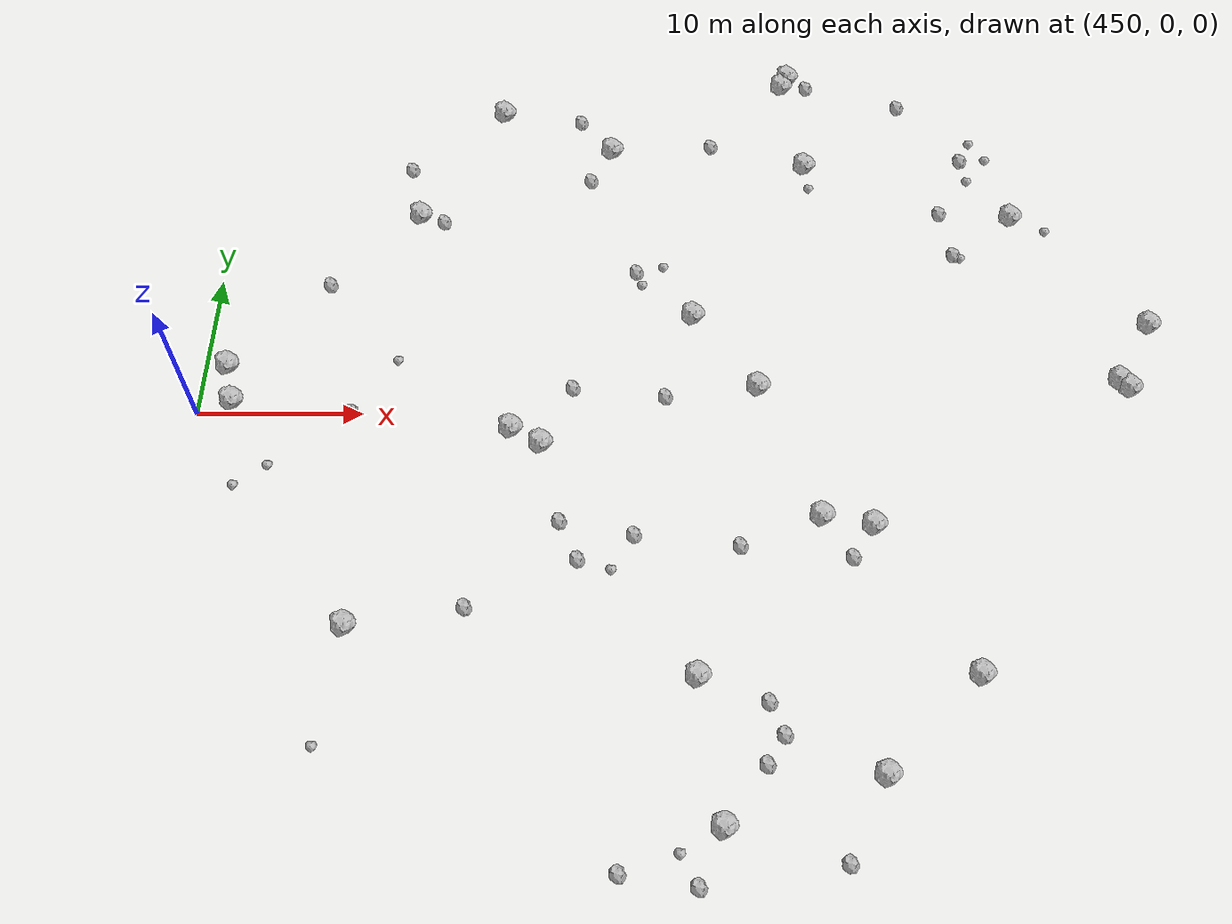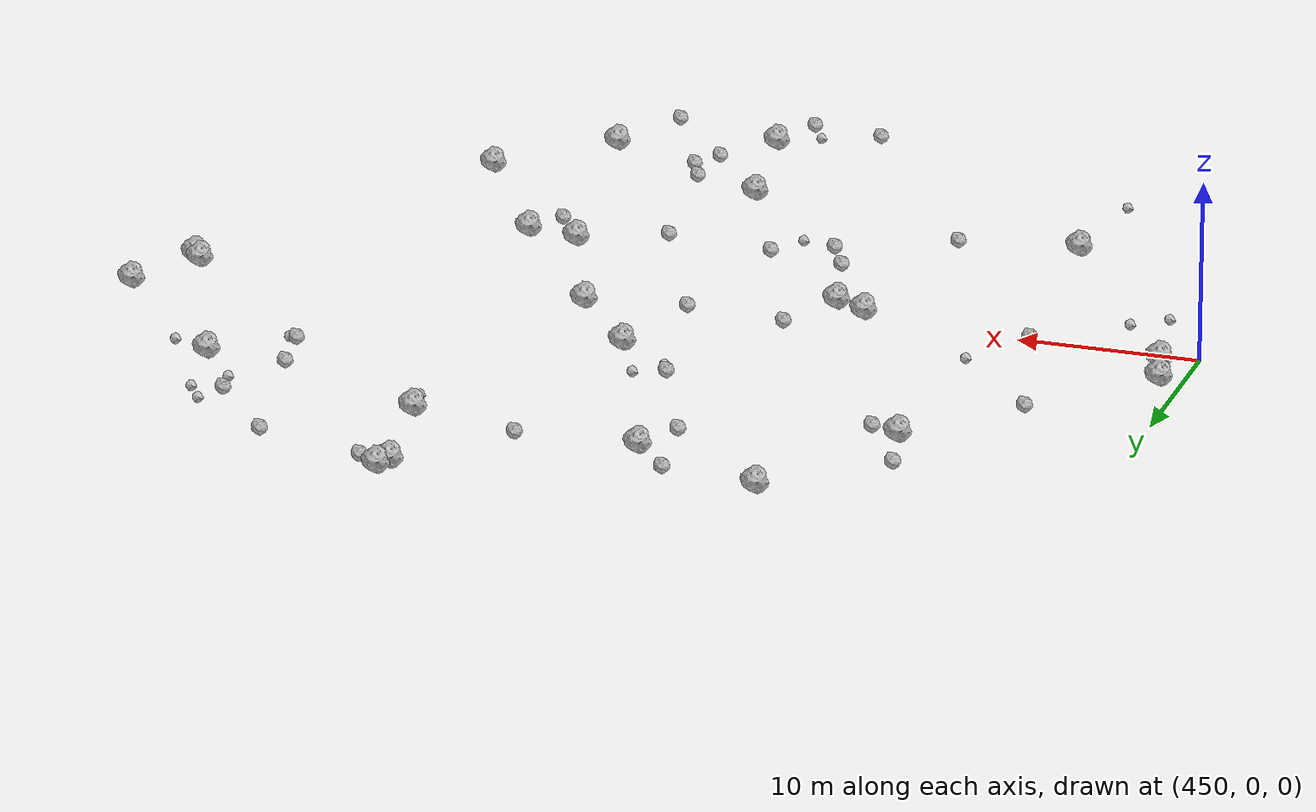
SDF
<sdf version="1.6">
 <world name="default">
  <include><uri>model://sun</uri></include>
  <model name="rock1_12_4">
   <include><uri>model://rock1</uri><pose>486.24751792514223 27.90586036801035 0.5 0 0 0</pose></include>
  </model>
  <model name="rock1_12_5">
   <include><uri>model://rock1</uri><pose>508.0959578543312 6.723588766633881 0.5 0 0 0</pose></include>
  </model>
  <model name="rock1_12_6">
   <include><uri>model://rock1</uri><pose>479.80540426777856 7.318488741608185 0.5 0 0 0</pose></include>
  </model>
  <model name="rock1_12_7">
   <include><uri>model://rock1</uri><pose>474.37820469455517 21.100102016511116 0.5 0 0 0</pose></include>
  </model>
  <model name="rock1_12_8">
   <include><uri>model://rock1</uri><pose>452.0124216611176 0.8327382865963813 0.5 0 0 0</pose></include>
  </model>
  <model name="rock1_12_9">
   <include><uri>model://rock1</uri><pose>490.2483811277626 -7.632700338549473 0.5 0 0 0</pose></include>
  </model>
  <model name="rock1_12_10">
   <include><uri>model://rock1</uri><pose>470.79351117713605 -2.1495590145183385 0.5 0 0 0</pose></include>
  </model>
  <model name="rock1_12_11">
   <include><uri>model://rock1</uri><pose>466.9942718094638 24.42323140706545 0.5 0 0 0</pose></include>
  </model>
  <model name="rock1_12_12">
   <include><uri>model://rock1</uri><pose>483.7690346029485 1.9785897016890353 0.5 0 0 0</pose></include>
  </model>
  <model name="rock1_12_13">
   <include><uri>model://rock1</uri><pose>490.0932177582639 -22.666061957751737 0.5 0 0 0</pose></include>
  </model>
  <model name="rock1_12_14">
   <include><uri>model://rock1</uri><pose>485.81805740023844 27.0361196448563 0.5 0 0 0</pose></include>
  </model>
  <model name="rock1_12_15">
   <include><uri>model://rock1</uri><pose>487.1539910541725 19.77514141049106 0.5 0 0 0</pose></include>
  </model>
  <model name="rock1_12_16">
   <include><uri>model://rock1</uri><pose>451.36066443323983 3.4358113991634767 0.5 0 0 0</pose></include>
  </model>
  <model name="rock1_12_17">
   <include><uri>model://rock1</uri><pose>480.13405845238674 -17.10632234038284 0.5 0 0 0</pose></include>
  </model>
  <model name="rock1_12_18">
   <include><uri>model://rock1</uri><pose>495.56094223632977 -16.91755364061995 0.5 0 0 0</pose></include>
  </model>
  <model name="rock1_12_19">
   <include><uri>model://rock1</uri><pose>506.27411481513167 1.9585276770152085 0.5 0 0 0</pose></include>
  </model>
  <model name="rock1_12_20">
   <include><uri>model://rock1</uri><pose>487.2825955861751 -7.047430694415969 0.5 0 0 0</pose></include>
  </model>
  <model name="rock1_12_21">
   <include><uri>model://rock1</uri><pose>481.5025479142638 -25.515215618274237 0.5 0 0 0</pose></include>
  </model>
  <model name="rock1_12_22">
   <include><uri>model://rock1</uri><pose>462.10222616433805 15.41350414657667 0.5 0 0 0</pose></include>
  </model>
  <model name="rock1_12_23">
   <include><uri>model://rock1</uri><pose>468.9516051487221 -1.0896657935641727 0.5 0 0 0</pose></include>
  </model>
  <model name="rock1_12_24">
   <include><uri>model://rock1</uri><pose>505.75198346866455 2.535645119061215 0.5 0 0 0</pose></include>
  </model>
  <model name="rock1_12_25">
   <include><uri>model://rock1</uri><pose>500.38363426096316 15.356779520839083 0.5 0 0 0</pose></include>
  </model>
  <model name="rock1_12_26">
   <include><uri>model://rock1</uri><pose>460.5378125267917 -14.138179949308643 0.5 0 0 0</pose></include>
  </model>
  <model name="rock2_12_0">
   <include><uri>model://rock2</uri><pose>461.1732295688793 19.36502807228633 0.3 0 0 0</pose></include>
  </model>
  <model name="rock2_12_1">
   <include><uri>model://rock2</uri><pose>484.7523513636728 -20.46110958434932 0.3 0 0 0</pose></include>
  </model>
  <model name="rock2_12_2">
   <include><uri>model://rock2</uri><pose>480.9316371937255 21.507001874894378 0.3 0 0 0</pose></include>
  </model>
  <model name="rock2_12_3">
   <include><uri>model://rock2</uri><pose>476.0423109171175 -27.997150049175833 0.3 0 0 0</pose></include>
  </model>
  <model name="rock2_12_4">
   <include><uri>model://rock2</uri><pose>487.46884631551086 26.94978056092964 0.3 0 0 0</pose></include>
  </model>
  <model name="rock2_12_5">
   <include><uri>model://rock2</uri><pose>472.2046472024708 23.68670438200848 0.3 0 0 0</pose></include>
  </model>
  <model name="rock2_12_6">
   <include><uri>model://rock2</uri><pose>482.53787779600987 -9.02210636790128 0.3 0 0 0</pose></include>
  </model>
  <model name="rock2_12_7">
   <include><uri>model://rock2</uri><pose>493.6351662890576 25.13327442943109 0.3 0 0 0</pose></include>
  </model>
  <model name="rock2_12_8">
   <include><uri>model://rock2</uri><pose>472.5413086359915 1.812738186181516 0.3 0 0 0</pose></include>
  </model>
  <model name="rock2_12_9">
   <include><uri>model://rock2</uri><pose>473.2637582005964 -9.941151499940219 0.3 0 0 0</pose></include>
  </model>
  <model name="rock2_12_10">
   <include><uri>model://rock2</uri><pose>487.86723574155593 -27.4291365355499 0.3 0 0 0</pose></include>
  </model>
  <model name="rock2_12_11">
   <include><uri>model://rock2</uri><pose>476.1991971298327 10.7682633814781 0.3 0 0 0</pose></include>
  </model>
  <model name="rock2_12_12">
   <include><uri>model://rock2</uri><pose>463.6448814162596 14.859529743767972 0.3 0 0 0</pose></include>
  </model>
  <model name="rock2_12_13">
   <include><uri>model://rock2</uri><pose>480.1694543941924 -28.661116096651554 0.3 0 0 0</pose></include>
  </model>
  <model name="rock2_12_14">
   <include><uri>model://rock2</uri><pose>476.4470671001076 -8.336550852129573 0.3 0 0 0</pose></include>
  </model>
  <model name="rock2_12_15">
   <include><uri>model://rock2</uri><pose>456.90957733891685 9.668962980279758 0.3 0 0 0</pose></include>
  </model>
  <model name="rock2_12_16">
   <include><uri>model://rock2</uri><pose>488.9330047331895 -9.72835632266181 0.3 0 0 0</pose></include>
  </model>
  <model name="rock2_12_17">
   <include><uri>model://rock2</uri><pose>459.33784220933984 0.029164029311111506 0.3 0 0 0</pose></include>
  </model>
  <model name="rock2_12_18">
   <include><uri>model://rock2</uri><pose>496.4247740940773 12.280125172048827 0.3 0 0 0</pose></include>
  </model>
  <model name="rock2_12_19">
   <include><uri>model://rock2</uri><pose>497.517864768446 20.307816177370427 0.3 0 0 0</pose></include>
  </model>
  <model name="rock2_12_20">
   <include><uri>model://rock2</uri><pose>483.9665750883382 -18.59480716724274 0.3 0 0 0</pose></include>
  </model>
  <model name="rock2_12_21">
   <include><uri>model://rock2</uri><pose>467.0933303683321 -12.997068076040364 0.3 0 0 0</pose></include>
  </model>
  <model name="rock2_12_22">
   <include><uri>model://rock2</uri><pose>472.12075654181564 -7.458816408712565 0.3 0 0 0</pose></include>
  </model>
  <model name="rock2_12_23">
   <include><uri>model://rock2</uri><pose>478.1364012033972 1.222992927360064 0.3 0 0 0</pose></include>
  </model>
  <model name="rock2_12_24">
   <include><uri>model://rock2</uri><pose>483.7860941054423 -22.130945263150366 0.3 0 0 0</pose></include>
  </model>
  <model name="rock2_12_25">
   <include><uri>model://rock2</uri><pose>473.04956144454553 18.44575715484855 0.3 0 0 0</pose></include>
  </model>
  <model name="rock2_12_26">
   <include><uri>model://rock2</uri><pose>495.78100338368375 15.702596580236097 0.3 0 0 0</pose></include>
  </model>
  <model name="rock3_12_0">
   <include><uri>model://rock3</uri><pose>459.6194372827652 -21.204304071629313 0.2 0 0 0</pose></include>
  </model>
  <model name="rock3_12_1">
   <include><uri>model://rock3</uri><pose>502.50102091662006 14.256949840702703 0.2 0 0 0</pose></include>
  </model>
  <model name="rock3_12_2">
   <include><uri>model://rock3</uri><pose>497.83935525056967 18.550935940747088 0.2 0 0 0</pose></include>
  </model>
  <model name="rock3_12_3">
   <include><uri>model://rock3</uri><pose>476.55852100715276 9.767379524178246 0.2 0 0 0</pose></include>
  </model>
  <model name="rock3_12_4">
   <include><uri>model://rock3</uri><pose>461.72217136146037 3.860230850697228 0.2 0 0 0</pose></include>
  </model>
  <model name="rock3_12_5">
   <include><uri>model://rock3</uri><pose>496.8402730111137 12.029777501121416 0.2 0 0 0</pose></include>
  </model>
  <model name="rock3_12_6">
   <include><uri>model://rock3</uri><pose>454.7577903647232 -3.694726676157959 0.2 0 0 0</pose></include>
  </model>
  <model name="rock3_12_7">
   <include><uri>model://rock3</uri><pose>498.2654433128979 21.8710273855281 0.2 0 0 0</pose></include>
  </model>
  <model name="rock3_12_8">
   <include><uri>model://rock3</uri><pose>452.9238462438992 -5.068163803871435 0.2 0 0 0</pose></include>
  </model>
  <model name="rock3_12_9">
   <include><uri>model://rock3</uri><pose>499.20704106439257 20.405862116343016 0.2 0 0 0</pose></include>
  </model>
  <model name="rock3_12_10">
   <include><uri>model://rock3</uri><pose>477.87289434196595 11.22032578144676 0.2 0 0 0</pose></include>
  </model>
  <model name="rock3_12_11">
   <include><uri>model://rock3</uri><pose>479.1880252199678 -26.920931043583384 0.2 0 0 0</pose></include>
  </model>
  <model name="rock3_12_12">
   <include><uri>model://rock3</uri><pose>475.1808567642231 -10.576167102488661 0.2 0 0 0</pose></include>
  </model>
  <model name="rock3_12_13">
   <include><uri>model://rock3</uri><pose>487.35829492725986 17.887770904257202 0.2 0 0 0</pose></include>
  </model>
 </world>
</sdf>
